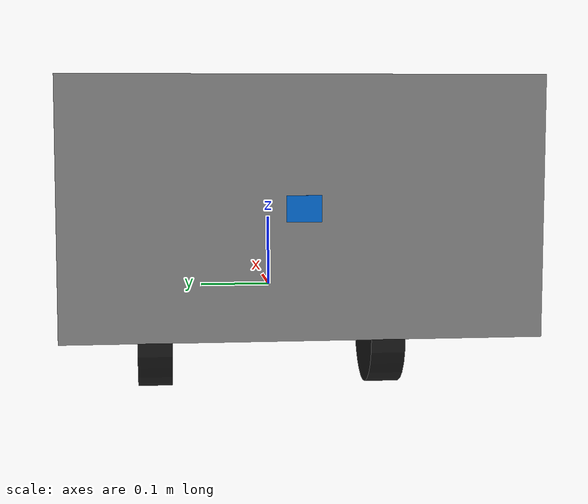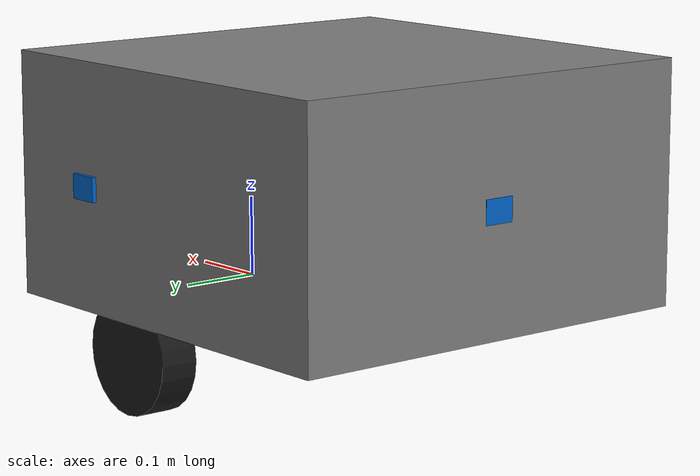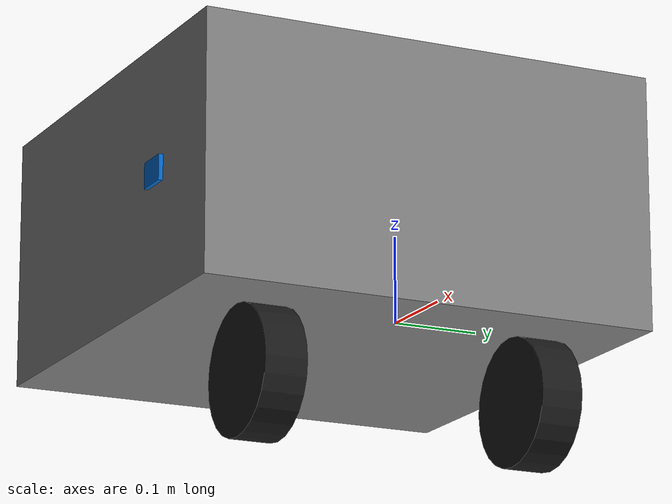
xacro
<?xml version="1.0"?>
<robot name="guide_robot" xmlns:xacro="http://www.ros.org/wiki/xacro">

  <!-- Параметры робота -->
  <xacro:property name="wheel_radius" value="0.075"/>
  <xacro:property name="wheel_base"   value="0.338"/>
  <xacro:property name="wheel_width"  value="0.05"/>
  <xacro:property name="sonar_height" value="0.15"/>

  <!-- ═══════════════════════════════════════════════════════
       BASE LINK — центр робота (между колёсами, на уровне пола)
       ═══════════════════════════════════════════════════════ -->
  <link name="base_link">
    <visual>
      <geometry>
        <!-- Примерные габариты корпуса: 55×55×30 см -->
        <box size="0.55 0.55 0.30"/>
      </geometry>
      <!-- Смещаем визуал вверх, чтобы низ корпуса был на уровне base_link -->
      <origin xyz="-0.18 0 0.15" rpy="0 0 0"/>
      <material name="grey">
        <color rgba="0.5 0.5 0.5 1.0"/>
      </material>
    </visual>
  </link>

  <xacro:macro name="wheel" params="name x y">

    <link name="${name}_wheel_link">
      <visual>
        <geometry>
          <cylinder radius="${wheel_radius}" length="${wheel_width}"/>
        </geometry>
        <!-- Поворачиваем цилиндр: по умолчанию его ось Z смотрит вверх,
             нам нужна ось Y (горизонтально) → поворот на 90° вокруг X -->
        <origin xyz="0 0 0" rpy="1.5708 0 0"/>
        <material name="black">
          <color rgba="0.1 0.1 0.1 1.0"/>
        </material>
      </visual>
    </link>

    <joint name="${name}_wheel_joint" type="continuous">
      <parent link="base_link"/>
      <child  link="${name}_wheel_link"/>
      <!-- Позиция колеса относительно base_link.
           z = -wheel_radius: колесо касается пола (base_link на уровне пола) -->
      <origin xyz="${x} ${y} ${-wheel_radius}" rpy="0 0 0"/>
      <!-- Колесо вращается вокруг оси Y (общая для обоих колёс) -->
      <axis xyz="0 1 0"/>
    </joint>

  </xacro:macro>

  <xacro:macro name="sonar_sensor" params="name x y yaw">

    <link name="sonar_${name}_link">
      <visual>
        <geometry>
          <box size="0.04 0.04 0.03"/>
        </geometry>
        <material name="blue">
          <color rgba="0.0 0.4 0.8 1.0"/>
        </material>
      </visual>
    </link>

    <joint name="sonar_${name}_joint" type="fixed">
      <parent link="base_link"/>
      <child  link="sonar_${name}_link"/>
      <!-- Сонары крепятся на высоте sonar_height от base_link -->
      <origin xyz="${x} ${y} ${sonar_height}" rpy="0 0 ${yaw}"/>
    </joint>

  </xacro:macro>

  <xacro:wheel name="left"  x="0" y="${wheel_base / 2}"/>
  <xacro:wheel name="right" x="0" y="${-wheel_base / 2}"/>

  <!-- Два спереди -->
  <xacro:sonar_sensor name="1" x="0.061107"  y="0.215993"  yaw="0.7336"/>
  <xacro:sonar_sensor name="9" x="0.061107"  y="-0.215993" yaw="-0.7336"/>

  <!-- Четыре по бокам -->
  <!-- Левый борт -->
  <xacro:sonar_sensor name="2" x="-0.040039" y="0.260183"  yaw="1.5708"/>
  <xacro:sonar_sensor name="4" x="-0.393220" y="0.132040"  yaw="2.4091"/>
  <!-- Правый борт -->
  <xacro:sonar_sensor name="8" x="-0.040039" y="-0.260183" yaw="-1.5708"/>
  <xacro:sonar_sensor name="6" x="-0.393220" y="-0.132040" yaw="-2.4091"/>

  <!-- Один сзади -->
  <xacro:sonar_sensor name="5" x="-0.435289" y="0.0"       yaw="3.1416"/>

</robot>
